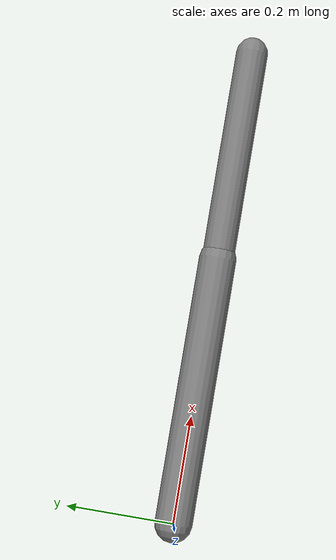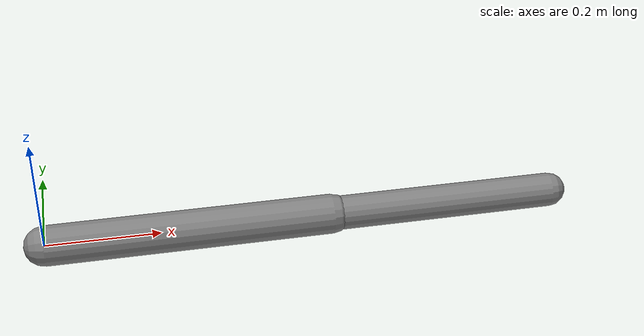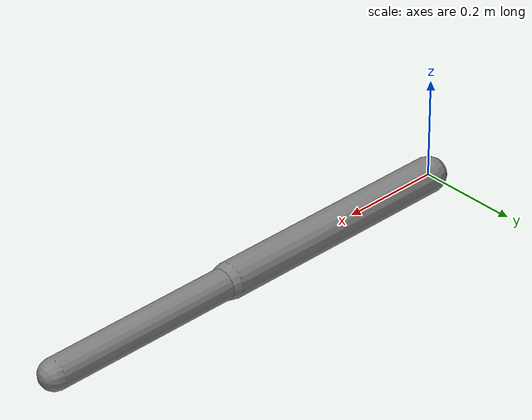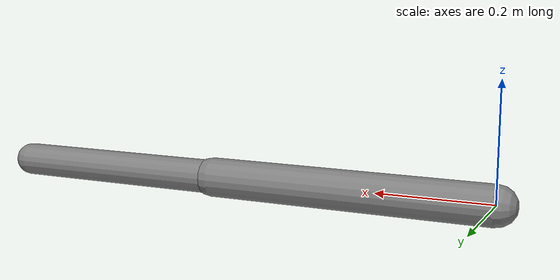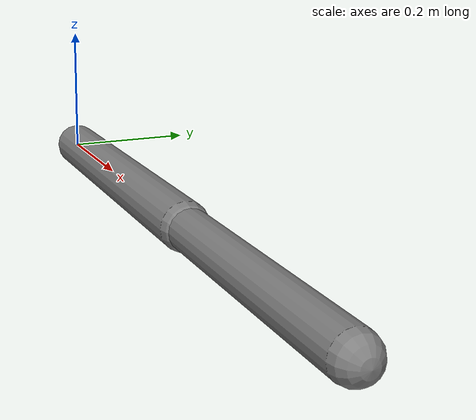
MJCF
<mujoco model="apply force">
  <option gravity="0 0 0"/>
  <worldbody>
    <body name="link1">
      <joint name="q1" axis="0 0 1"/>
      <geom type="capsule" fromto="0 0 0  .5 0 0" size=".035" mass="1"/>
      <body name="link2" pos=".5 0 0">
        <joint name="q2" axis="0 0 1"/>
        <geom type="capsule" fromto="0 0 0  .4 0 0" size=".03" mass=".7"/>
        <site name="tcp" pos=".4 0 0" size=".02"/>
      </body>
    </body>
  </worldbody>
</mujoco>
